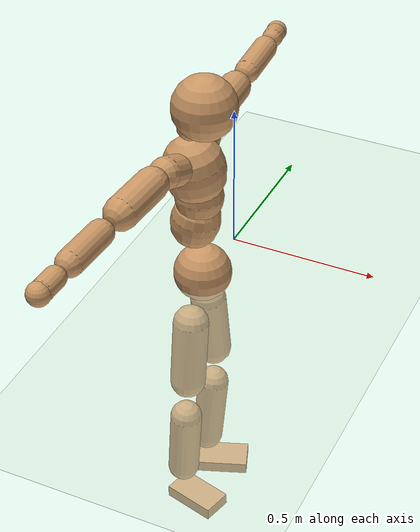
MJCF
<mujoco model="humanoid">
  <compiler coordinate="local"/>
  <default>
    <joint damping="0.0" armature="0.01" stiffness="0.0" limited="true"/>
    <geom conaffinity="1" condim="3" contype="7" margin="0.001" rgba="0.8 0.6 .4 1"/>
  </default>
  <asset>
    <texture type="skybox" builtin="gradient" rgb1=".4 .5 .6" rgb2="0 0 0" width="100" height="100"/>
    <texture builtin="flat" height="1278" mark="cross" markrgb="1 1 1" name="texgeom" random="0.01" rgb1="0.8 0.6 0.4" rgb2="0.8 0.6 0.4" type="cube" width="127"/>
    <texture builtin="checker" height="100" name="texplane" rgb1="0 0 0" rgb2="0.8 0.8 0.8" type="2d" width="100"/>
    <material name="MatPlane" reflectance="0.5" shininess="1" specular="1" texrepeat="60 60" texture="texplane"/>
    <material name="geom" texture="texgeom" texuniform="true"/>
  </asset>
  <worldbody>
    <light cutoff="100" diffuse="1 1 1" dir="-0 0 -1.3" directional="true" exponent="1" pos="0 0 1.3" specular=".1 .1 .1"/>
    <geom conaffinity="1" condim="3" name="floor" pos="0 0 0" rgba="0.8 0.9 0.8 1" size="100 100 .2" type="plane" material="MatPlane"/>
    <body name="Pelvis" pos="-0.002 -0.2374 0.0287">
      <freejoint name="Pelvis"/>
      <geom type="sphere" contype="1" conaffinity="1" density="500" size="0.0961" pos="0.0000 0.0000 0.0000" name="Pelvis"/>
      <body name="L_Hip" pos="-0.0162 0.0575 -0.082">
        <joint name="L_Hip_x" type="hinge" pos="0 0 0" axis="1 0 0" stiffness="800" damping="80" armature="0.02" range="-180.0000 180.0000"/>
        <joint name="L_Hip_y" type="hinge" pos="0 0 0" axis="0 1 0" stiffness="800" damping="80" armature="0.02" range="-180.0000 180.0000"/>
        <joint name="L_Hip_z" type="hinge" pos="0 0 0" axis="0 0 1" stiffness="800" damping="80" armature="0.02" range="-180.0000 180.0000"/>
        <geom type="capsule" contype="1" conaffinity="1" density="500" fromto="0.0020 0.0089 -0.0783 0.0080 0.0355 -0.3132" size="0.0601" name="L_Hip"/>
        <body name="L_Knee" pos="0.01 0.0444 -0.3915">
          <joint name="L_Knee_x" type="hinge" pos="0 0 0" axis="1 0 0" stiffness="800" damping="80" armature="0.02" range="-180.0000 180.0000"/>
          <joint name="L_Knee_y" type="hinge" pos="0 0 0" axis="0 1 0" stiffness="800" damping="80" armature="0.02" range="-180.0000 180.0000"/>
          <joint name="L_Knee_z" type="hinge" pos="0 0 0" axis="0 0 1" stiffness="800" damping="80" armature="0.02" range="-180.0000 180.0000"/>
          <geom type="capsule" contype="1" conaffinity="1" density="500" fromto="-0.0073 -0.0029 -0.0867 -0.0291 -0.0116 -0.3469" size="0.0536" name="L_Knee"/>
          <body name="L_Ankle" pos="-0.0363 -0.0145 -0.4336">
            <joint name="L_Ankle_x" type="hinge" pos="0 0 0" axis="1 0 0" stiffness="800" damping="80" armature="0.02" range="-180.0000 180.0000"/>
            <joint name="L_Ankle_y" type="hinge" pos="0 0 0" axis="0 1 0" stiffness="800" damping="80" armature="0.02" range="-180.0000 180.0000"/>
            <joint name="L_Ankle_z" type="hinge" pos="0 0 0" axis="0 0 1" stiffness="800" damping="80" armature="0.02" range="-180.0000 180.0000"/>
            <geom type="box" contype="1" conaffinity="1" density="500" pos="0.0610 0.0228 -0.0307" size="0.0881 0.0539 0.0211" quat="0.9840 0.0000 0.0000 0.1781" name="L_Ankle"/>
            <body name="L_Toe" pos="0.122 0.0457 -0.0614">
              <joint name="L_Toe_x" type="hinge" pos="0 0 0" axis="1 0 0" stiffness="500" damping="50" armature="0.02" range="-180.0000 180.0000"/>
              <joint name="L_Toe_y" type="hinge" pos="0 0 0" axis="0 1 0" stiffness="500" damping="50" armature="0.02" range="-180.0000 180.0000"/>
              <joint name="L_Toe_z" type="hinge" pos="0 0 0" axis="0 0 1" stiffness="500" damping="50" armature="0.02" range="-180.0000 180.0000"/>
              <geom type="box" contype="1" conaffinity="1" density="500" pos="0.0000 0.0000 0.0309" size="0.0011 0.0025 0.0011" quat="0.9832 0.0000 0.0000 0.1825" name="L_Toe"/>
            </body>
          </body>
        </body>
      </body>
      <body name="R_Hip" pos="-0.0117 -0.0587 -0.0907">
        <joint name="R_Hip_x" type="hinge" pos="0 0 0" axis="1 0 0" stiffness="800" damping="80" armature="0.02" range="-180.0000 180.0000"/>
        <joint name="R_Hip_y" type="hinge" pos="0 0 0" axis="0 1 0" stiffness="800" damping="80" armature="0.02" range="-180.0000 180.0000"/>
        <joint name="R_Hip_z" type="hinge" pos="0 0 0" axis="0 0 1" stiffness="800" damping="80" armature="0.02" range="-180.0000 180.0000"/>
        <geom type="capsule" contype="1" conaffinity="1" density="500" fromto="-0.0007 -0.0090 -0.0774 -0.0028 -0.0360 -0.3096" size="0.0595" name="R_Hip"/>
        <body name="R_Knee" pos="-0.0035 -0.045 -0.387">
          <joint name="R_Knee_x" type="hinge" pos="0 0 0" axis="1 0 0" stiffness="800" damping="80" armature="0.02" range="-180.0000 180.0000"/>
          <joint name="R_Knee_y" type="hinge" pos="0 0 0" axis="0 1 0" stiffness="800" damping="80" armature="0.02" range="-180.0000 180.0000"/>
          <joint name="R_Knee_z" type="hinge" pos="0 0 0" axis="0 0 1" stiffness="800" damping="80" armature="0.02" range="-180.0000 180.0000"/>
          <geom type="capsule" contype="1" conaffinity="1" density="500" fromto="-0.0068 0.0037 -0.0852 -0.0273 0.0147 -0.3406" size="0.0542" name="R_Knee"/>
          <body name="R_Ankle" pos="-0.0341 0.0184 -0.4258">
            <joint name="R_Ankle_x" type="hinge" pos="0 0 0" axis="1 0 0" stiffness="800" damping="80" armature="0.02" range="-180.0000 180.0000"/>
            <joint name="R_Ankle_y" type="hinge" pos="0 0 0" axis="0 1 0" stiffness="800" damping="80" armature="0.02" range="-180.0000 180.0000"/>
            <joint name="R_Ankle_z" type="hinge" pos="0 0 0" axis="0 0 1" stiffness="800" damping="80" armature="0.02" range="-180.0000 180.0000"/>
            <geom type="box" contype="1" conaffinity="1" density="500" pos="0.0656 -0.0170 -0.0313" size="0.0923 0.0507 0.022" quat="0.9919 0.0000 0.0000 -0.1266" name="R_Ankle"/>
            <body name="R_Toe" pos="0.1312 -0.034 -0.0626">
              <joint name="R_Toe_x" type="hinge" pos="0 0 0" axis="1 0 0" stiffness="500" damping="50" armature="0.02" range="-180.0000 180.0000"/>
              <joint name="R_Toe_y" type="hinge" pos="0 0 0" axis="0 1 0" stiffness="500" damping="50" armature="0.02" range="-180.0000 180.0000"/>
              <joint name="R_Toe_z" type="hinge" pos="0 0 0" axis="0 0 1" stiffness="500" damping="50" armature="0.02" range="-180.0000 180.0000"/>
              <geom type="box" contype="1" conaffinity="1" density="500" pos="0.0000 0.0000 0.0315" size="0.0011 0.0025 0.0011" quat="0.9930 0.0000 0.0000 -0.1178" name="R_Toe"/>
            </body>
          </body>
        </body>
      </body>
      <body name="Torso" pos="-0.039 0.0046 0.1248">
        <joint name="Torso_x" type="hinge" pos="0 0 0" axis="1 0 0" stiffness="1000" damping="100" armature="0.02" range="-180.0000 180.0000"/>
        <joint name="Torso_y" type="hinge" pos="0 0 0" axis="0 1 0" stiffness="1000" damping="100" armature="0.02" range="-180.0000 180.0000"/>
        <joint name="Torso_z" type="hinge" pos="0 0 0" axis="0 0 1" stiffness="1000" damping="100" armature="0.02" range="-180.0000 180.0000"/>
        <geom type="capsule" contype="1" conaffinity="1" density="500" fromto="0.0159 0.0028 0.0817 0.0106 0.0019 0.0545" size="0.0805" name="Torso"/>
        <body name="Spine" pos="0.0264 0.0047 0.1362">
          <joint name="Spine_x" type="hinge" pos="0 0 0" axis="1 0 0" stiffness="1000" damping="100" armature="0.02" range="-180.0000 180.0000"/>
          <joint name="Spine_y" type="hinge" pos="0 0 0" axis="0 1 0" stiffness="1000" damping="100" armature="0.02" range="-180.0000 180.0000"/>
          <joint name="Spine_z" type="hinge" pos="0 0 0" axis="0 0 1" stiffness="1000" damping="100" armature="0.02" range="-180.0000 180.0000"/>
          <geom type="capsule" contype="1" conaffinity="1" density="500" fromto="0.0008 -0.0015 0.0331 0.0005 -0.0010 0.0221" size="0.0787" name="Spine"/>
          <body name="Chest" pos="0.0013 -0.0025 0.0552">
            <joint name="Chest_x" type="hinge" pos="0 0 0" axis="1 0 0" stiffness="1000" damping="100" armature="0.02" range="-180.0000 180.0000"/>
            <joint name="Chest_y" type="hinge" pos="0 0 0" axis="0 1 0" stiffness="1000" damping="100" armature="0.02" range="-180.0000 180.0000"/>
            <joint name="Chest_z" type="hinge" pos="0 0 0" axis="0 0 1" stiffness="1000" damping="100" armature="0.02" range="-180.0000 180.0000"/>
            <geom type="capsule" contype="1" conaffinity="1" density="500" fromto="-0.0159 -0.0047 0.0871 -0.0106 -0.0031 0.0581" size="0.0998" name="Chest"/>
            <body name="Neck" pos="-0.031 -0.0121 0.2098">
              <joint name="Neck_x" type="hinge" pos="0 0 0" axis="1 0 0" stiffness="500" damping="50" armature="0.02" range="-180.0000 180.0000"/>
              <joint name="Neck_y" type="hinge" pos="0 0 0" axis="0 1 0" stiffness="500" damping="50" armature="0.02" range="-180.0000 180.0000"/>
              <joint name="Neck_z" type="hinge" pos="0 0 0" axis="0 0 1" stiffness="500" damping="50" armature="0.02" range="-180.0000 180.0000"/>
              <geom type="capsule" contype="1" conaffinity="1" density="500" fromto="0.0107 0.0020 0.0180 0.0427 0.0082 0.0722" size="0.0448" name="Neck"/>
              <body name="Head" pos="0.0534 0.0102 0.0902">
                <joint name="Head_x" type="hinge" pos="0 0 0" axis="1 0 0" stiffness="500" damping="50" armature="0.02" range="-180.0000 180.0000"/>
                <joint name="Head_y" type="hinge" pos="0 0 0" axis="0 1 0" stiffness="500" damping="50" armature="0.02" range="-180.0000 180.0000"/>
                <joint name="Head_z" type="hinge" pos="0 0 0" axis="0 0 1" stiffness="500" damping="50" armature="0.02" range="-180.0000 180.0000"/>
                <geom type="sphere" contype="1" conaffinity="1" density="500" size="0.1039" pos="0.0000 0.0000 0.0000" name="Head"/>
              </body>
            </body>
            <body name="L_Thorax" pos="-0.0227 0.0667 0.1134">
              <joint name="L_Thorax_x" type="hinge" pos="0 0 0" axis="1 0 0" stiffness="500" damping="50" armature="0.02" range="-180.0000 180.0000"/>
              <joint name="L_Thorax_y" type="hinge" pos="0 0 0" axis="0 1 0" stiffness="500" damping="50" armature="0.02" range="-180.0000 180.0000"/>
              <joint name="L_Thorax_z" type="hinge" pos="0 0 0" axis="0 0 1" stiffness="500" damping="50" armature="0.02" range="-180.0000 180.0000"/>
              <geom type="capsule" contype="1" conaffinity="1" density="500" fromto="-0.0034 0.0230 0.0086 -0.0136 0.0921 0.0344" size="0.0509" name="L_Thorax"/>
              <body name="L_Shoulder" pos="-0.017 0.1151 0.043">
                <joint name="L_Shoulder_x" type="hinge" pos="0 0 0" axis="1 0 0" stiffness="500" damping="50" armature="0.02" range="-720.0000 720.0000"/>
                <joint name="L_Shoulder_y" type="hinge" pos="0 0 0" axis="0 1 0" stiffness="500" damping="50" armature="0.02" range="-720.0000 720.0000"/>
                <joint name="L_Shoulder_z" type="hinge" pos="0 0 0" axis="0 0 1" stiffness="500" damping="50" armature="0.02" range="-720.0000 720.0000"/>
                <geom type="capsule" contype="1" conaffinity="1" density="500" fromto="-0.0043 0.0518 -0.0029 -0.0172 0.2071 -0.0117" size="0.0524" name="L_Shoulder"/>
                <body name="L_Elbow" pos="-0.0215 0.2589 -0.0146">
                  <joint name="L_Elbow_x" type="hinge" pos="0 0 0" axis="1 0 0" stiffness="500" damping="50" armature="0.02" range="-720.0000 720.0000"/>
                  <joint name="L_Elbow_y" type="hinge" pos="0 0 0" axis="0 1 0" stiffness="500" damping="50" armature="0.02" range="-720.0000 720.0000"/>
                  <joint name="L_Elbow_z" type="hinge" pos="0 0 0" axis="0 0 1" stiffness="500" damping="50" armature="0.02" range="-720.0000 720.0000"/>
                  <geom type="capsule" contype="1" conaffinity="1" density="500" fromto="-0.0019 0.0537 0.0024 -0.0074 0.2147 0.0097" size="0.041" name="L_Elbow"/>
                  <body name="L_Wrist" pos="-0.0093 0.2684 0.0121">
                    <joint name="L_Wrist_x" type="hinge" pos="0 0 0" axis="1 0 0" stiffness="300" damping="30" armature="0.02" range="-180.0000 180.0000"/>
                    <joint name="L_Wrist_y" type="hinge" pos="0 0 0" axis="0 1 0" stiffness="300" damping="30" armature="0.02" range="-180.0000 180.0000"/>
                    <joint name="L_Wrist_z" type="hinge" pos="0 0 0" axis="0 0 1" stiffness="300" damping="30" armature="0.02" range="-180.0000 180.0000"/>
                    <geom type="capsule" contype="1" conaffinity="1" density="500" fromto="-0.0032 0.0174 -0.0021 -0.0127 0.0698 -0.0084" size="0.0342" name="L_Wrist"/>
                    <body name="L_Hand" pos="-0.0158 0.0872 -0.0105">
                      <joint name="L_Hand_x" type="hinge" pos="0 0 0" axis="1 0 0" stiffness="300" damping="30" armature="0.02" range="-180.0000 180.0000"/>
                      <joint name="L_Hand_y" type="hinge" pos="0 0 0" axis="0 1 0" stiffness="300" damping="30" armature="0.02" range="-180.0000 180.0000"/>
                      <joint name="L_Hand_z" type="hinge" pos="0 0 0" axis="0 0 1" stiffness="300" damping="30" armature="0.02" range="-180.0000 180.0000"/>
                      <geom type="sphere" contype="1" conaffinity="1" density="500" size="0.0357" pos="0.0000 0.0000 0.0000" name="L_Hand"/>
                    </body>
                  </body>
                </body>
              </body>
            </body>
            <body name="R_Thorax" pos="-0.0256 -0.078 0.1122">
              <joint name="R_Thorax_x" type="hinge" pos="0 0 0" axis="1 0 0" stiffness="500" damping="50" armature="0.02" range="-180.0000 180.0000"/>
              <joint name="R_Thorax_y" type="hinge" pos="0 0 0" axis="0 1 0" stiffness="500" damping="50" armature="0.02" range="-180.0000 180.0000"/>
              <joint name="R_Thorax_z" type="hinge" pos="0 0 0" axis="0 0 1" stiffness="500" damping="50" armature="0.02" range="-180.0000 180.0000"/>
              <geom type="capsule" contype="1" conaffinity="1" density="500" fromto="-0.0013 -0.0214 0.0088 -0.0054 -0.0854 0.0350" size="0.0513" name="R_Thorax"/>
              <body name="R_Shoulder" pos="-0.0067 -0.1068 0.0438">
                <joint name="R_Shoulder_x" type="hinge" pos="0 0 0" axis="1 0 0" stiffness="500" damping="50" armature="0.02" range="-720.0000 720.0000"/>
                <joint name="R_Shoulder_y" type="hinge" pos="0 0 0" axis="0 1 0" stiffness="500" damping="50" armature="0.02" range="-720.0000 720.0000"/>
                <joint name="R_Shoulder_z" type="hinge" pos="0 0 0" axis="0 0 1" stiffness="500" damping="50" armature="0.02" range="-720.0000 720.0000"/>
                <geom type="capsule" contype="1" conaffinity="1" density="500" fromto="-0.0057 -0.0527 -0.0029 -0.0227 -0.2107 -0.0115" size="0.0534" name="R_Shoulder"/>
                <body name="R_Elbow" pos="-0.0284 -0.2634 -0.0143">
                  <joint name="R_Elbow_x" type="hinge" pos="0 0 0" axis="1 0 0" stiffness="500" damping="50" armature="0.02" range="-720.0000 720.0000"/>
                  <joint name="R_Elbow_y" type="hinge" pos="0 0 0" axis="0 1 0" stiffness="500" damping="50" armature="0.02" range="-720.0000 720.0000"/>
                  <joint name="R_Elbow_z" type="hinge" pos="0 0 0" axis="0 0 1" stiffness="500" damping="50" armature="0.02" range="-720.0000 720.0000"/>
                  <geom type="capsule" contype="1" conaffinity="1" density="500" fromto="-0.0015 -0.0549 0.0020 -0.0061 -0.2195 0.0080" size="0.0418" name="R_Elbow"/>
                  <body name="R_Wrist" pos="-0.0076 -0.2743 0.0099">
                    <joint name="R_Wrist_x" type="hinge" pos="0 0 0" axis="1 0 0" stiffness="300" damping="30" armature="0.02" range="-180.0000 180.0000"/>
                    <joint name="R_Wrist_y" type="hinge" pos="0 0 0" axis="0 1 0" stiffness="300" damping="30" armature="0.02" range="-180.0000 180.0000"/>
                    <joint name="R_Wrist_z" type="hinge" pos="0 0 0" axis="0 0 1" stiffness="300" damping="30" armature="0.02" range="-180.0000 180.0000"/>
                    <geom type="capsule" contype="1" conaffinity="1" density="500" fromto="-0.0021 -0.0180 -0.0017 -0.0083 -0.0718 -0.0069" size="0.035" name="R_Wrist"/>
                    <body name="R_Hand" pos="-0.0103 -0.0898 -0.0087">
                      <joint name="R_Hand_x" type="hinge" pos="0 0 0" axis="1 0 0" stiffness="300" damping="30" armature="0.02" range="-180.0000 180.0000"/>
                      <joint name="R_Hand_y" type="hinge" pos="0 0 0" axis="0 1 0" stiffness="300" damping="30" armature="0.02" range="-180.0000 180.0000"/>
                      <joint name="R_Hand_z" type="hinge" pos="0 0 0" axis="0 0 1" stiffness="300" damping="30" armature="0.02" range="-180.0000 180.0000"/>
                      <geom type="sphere" contype="1" conaffinity="1" density="500" size="0.0365" pos="0.0000 0.0000 0.0000" name="R_Hand"/>
                    </body>
                  </body>
                </body>
              </body>
            </body>
          </body>
        </body>
      </body>
    </body>
  </worldbody>
  <actuator>
    <motor name="L_Hip_x" joint="L_Hip_x" gear="500"/>
    <motor name="L_Hip_y" joint="L_Hip_y" gear="500"/>
    <motor name="L_Hip_z" joint="L_Hip_z" gear="500"/>
    <motor name="L_Knee_x" joint="L_Knee_x" gear="500"/>
    <motor name="L_Knee_y" joint="L_Knee_y" gear="500"/>
    <motor name="L_Knee_z" joint="L_Knee_z" gear="500"/>
    <motor name="L_Ankle_x" joint="L_Ankle_x" gear="500"/>
    <motor name="L_Ankle_y" joint="L_Ankle_y" gear="500"/>
    <motor name="L_Ankle_z" joint="L_Ankle_z" gear="500"/>
    <motor name="L_Toe_x" joint="L_Toe_x" gear="500"/>
    <motor name="L_Toe_y" joint="L_Toe_y" gear="500"/>
    <motor name="L_Toe_z" joint="L_Toe_z" gear="500"/>
    <motor name="R_Hip_x" joint="R_Hip_x" gear="500"/>
    <motor name="R_Hip_y" joint="R_Hip_y" gear="500"/>
    <motor name="R_Hip_z" joint="R_Hip_z" gear="500"/>
    <motor name="R_Knee_x" joint="R_Knee_x" gear="500"/>
    <motor name="R_Knee_y" joint="R_Knee_y" gear="500"/>
    <motor name="R_Knee_z" joint="R_Knee_z" gear="500"/>
    <motor name="R_Ankle_x" joint="R_Ankle_x" gear="500"/>
    <motor name="R_Ankle_y" joint="R_Ankle_y" gear="500"/>
    <motor name="R_Ankle_z" joint="R_Ankle_z" gear="500"/>
    <motor name="R_Toe_x" joint="R_Toe_x" gear="500"/>
    <motor name="R_Toe_y" joint="R_Toe_y" gear="500"/>
    <motor name="R_Toe_z" joint="R_Toe_z" gear="500"/>
    <motor name="Torso_x" joint="Torso_x" gear="500"/>
    <motor name="Torso_y" joint="Torso_y" gear="500"/>
    <motor name="Torso_z" joint="Torso_z" gear="500"/>
    <motor name="Spine_x" joint="Spine_x" gear="500"/>
    <motor name="Spine_y" joint="Spine_y" gear="500"/>
    <motor name="Spine_z" joint="Spine_z" gear="500"/>
    <motor name="Chest_x" joint="Chest_x" gear="500"/>
    <motor name="Chest_y" joint="Chest_y" gear="500"/>
    <motor name="Chest_z" joint="Chest_z" gear="500"/>
    <motor name="Neck_x" joint="Neck_x" gear="500"/>
    <motor name="Neck_y" joint="Neck_y" gear="500"/>
    <motor name="Neck_z" joint="Neck_z" gear="500"/>
    <motor name="Head_x" joint="Head_x" gear="500"/>
    <motor name="Head_y" joint="Head_y" gear="500"/>
    <motor name="Head_z" joint="Head_z" gear="500"/>
    <motor name="L_Thorax_x" joint="L_Thorax_x" gear="500"/>
    <motor name="L_Thorax_y" joint="L_Thorax_y" gear="500"/>
    <motor name="L_Thorax_z" joint="L_Thorax_z" gear="500"/>
    <motor name="L_Shoulder_x" joint="L_Shoulder_x" gear="500"/>
    <motor name="L_Shoulder_y" joint="L_Shoulder_y" gear="500"/>
    <motor name="L_Shoulder_z" joint="L_Shoulder_z" gear="500"/>
    <motor name="L_Elbow_x" joint="L_Elbow_x" gear="500"/>
    <motor name="L_Elbow_y" joint="L_Elbow_y" gear="500"/>
    <motor name="L_Elbow_z" joint="L_Elbow_z" gear="500"/>
    <motor name="L_Wrist_x" joint="L_Wrist_x" gear="500"/>
    <motor name="L_Wrist_y" joint="L_Wrist_y" gear="500"/>
    <motor name="L_Wrist_z" joint="L_Wrist_z" gear="500"/>
    <motor name="L_Hand_x" joint="L_Hand_x" gear="500"/>
    <motor name="L_Hand_y" joint="L_Hand_y" gear="500"/>
    <motor name="L_Hand_z" joint="L_Hand_z" gear="500"/>
    <motor name="R_Thorax_x" joint="R_Thorax_x" gear="500"/>
    <motor name="R_Thorax_y" joint="R_Thorax_y" gear="500"/>
    <motor name="R_Thorax_z" joint="R_Thorax_z" gear="500"/>
    <motor name="R_Shoulder_x" joint="R_Shoulder_x" gear="500"/>
    <motor name="R_Shoulder_y" joint="R_Shoulder_y" gear="500"/>
    <motor name="R_Shoulder_z" joint="R_Shoulder_z" gear="500"/>
    <motor name="R_Elbow_x" joint="R_Elbow_x" gear="500"/>
    <motor name="R_Elbow_y" joint="R_Elbow_y" gear="500"/>
    <motor name="R_Elbow_z" joint="R_Elbow_z" gear="500"/>
    <motor name="R_Wrist_x" joint="R_Wrist_x" gear="500"/>
    <motor name="R_Wrist_y" joint="R_Wrist_y" gear="500"/>
    <motor name="R_Wrist_z" joint="R_Wrist_z" gear="500"/>
    <motor name="R_Hand_x" joint="R_Hand_x" gear="500"/>
    <motor name="R_Hand_y" joint="R_Hand_y" gear="500"/>
    <motor name="R_Hand_z" joint="R_Hand_z" gear="500"/>
  </actuator>
  <contact>
    <exclude body1="Torso" body2="Chest"/>
    <exclude body1="Head" body2="Chest"/>
    <exclude body1="R_Knee" body2="R_Toe"/>
    <exclude body1="R_Knee" body2="L_Ankle"/>
    <exclude body1="R_Knee" body2="L_Toe"/>
    <exclude body1="L_Knee" body2="L_Toe"/>
    <exclude body1="L_Knee" body2="R_Ankle"/>
    <exclude body1="L_Knee" body2="R_Toe"/>
    <exclude body1="L_Shoulder" body2="Chest"/>
    <exclude body1="R_Shoulder" body2="Chest"/>
  </contact>
  <sensor/>
  <size njmax="700" nconmax="700"/>
</mujoco>
